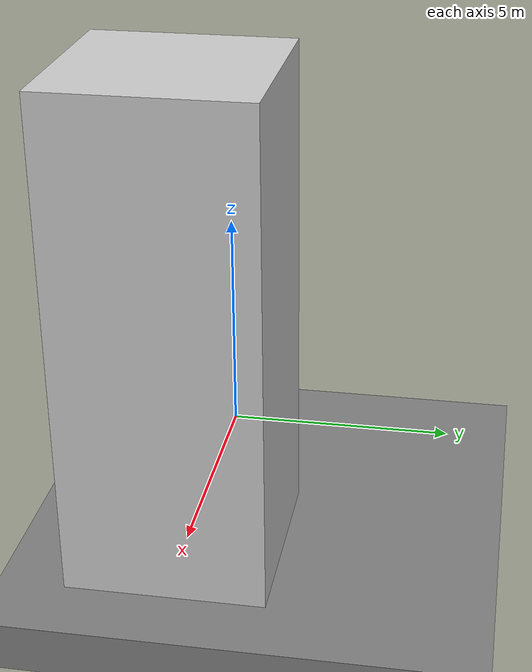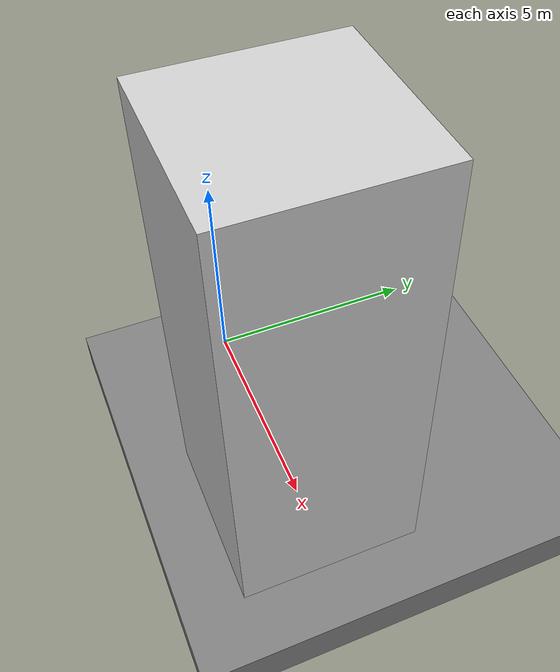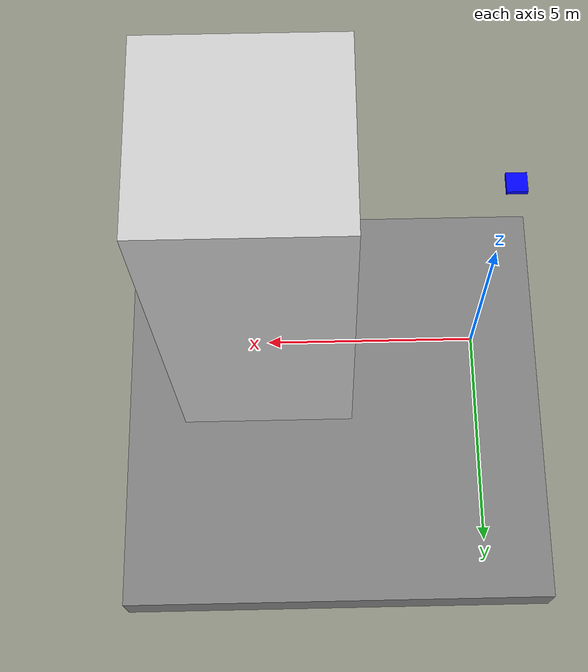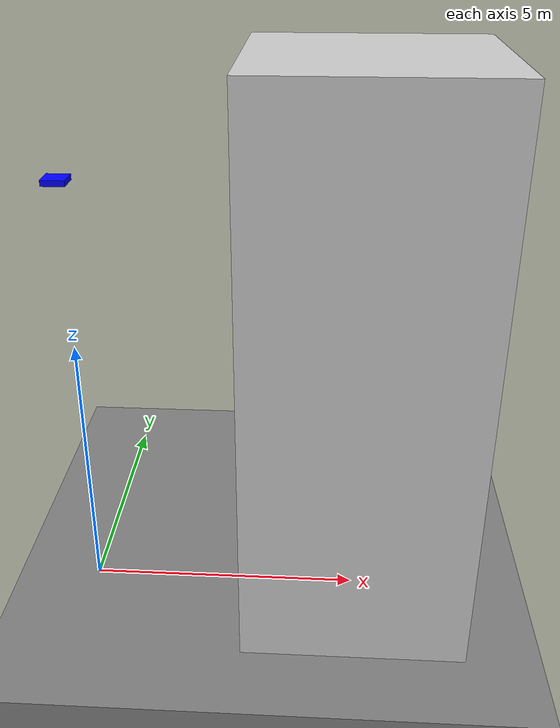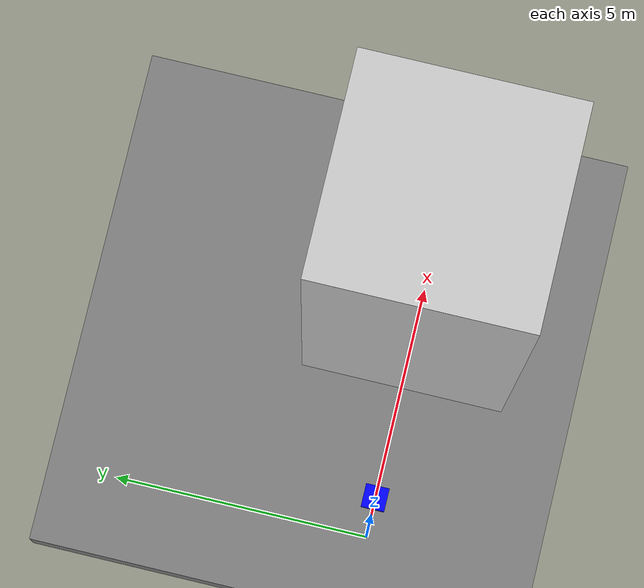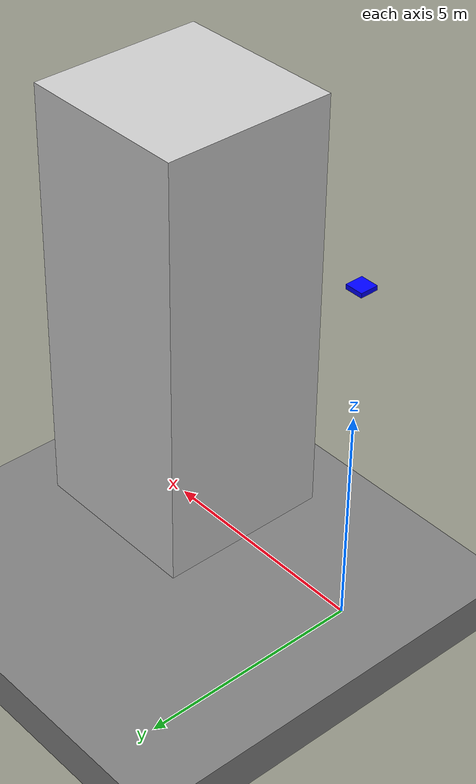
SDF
<sdf version="1.9">
 <world name="simple_city">
  <plugin filename="gz-sim-physics-system" name="gz::sim::systems::Physics"/>
  <plugin filename="gz-sim-sensors-system" name="gz::sim::systems::Sensors">
   <render_engine>ogre2</render_engine>
  </plugin>
  <plugin filename="gz-sim-scene-broadcaster-system" name="gz::sim::systems::SceneBroadcaster"/>
  <plugin filename="gz-sim-user-commands-system" name="gz::sim::systems::UserCommands"/>
  <physics name="1ms" type="ignored">
   <max_step_size>0.001</max_step_size>
   <real_time_factor>1.0</real_time_factor>
  </physics>
  <model name="ground">
   <static>true</static>
   <pose>0 0 -0.5 0 0 0</pose>
   <link name="link">
    <collision name="collision"><geometry><box><size>100 100 1</size></box></geometry></collision>
    <visual name="visual">
     <geometry><box><size>100 100 1</size></box></geometry>
     <material><ambient>0.4 0.4 0.4 1</ambient><diffuse>0.5 0.5 0.5 1</diffuse></material>
    </visual>
   </link>
  </model>
  <model name="building_1">
   <static>true</static>
   <pose>5 0 5 0 0 0</pose>
   <link name="link">
    <collision name="collision"><geometry><box><size>4 4 10</size></box></geometry></collision>
    <visual name="visual">
     <geometry><box><size>4 4 10</size></box></geometry>
     <material><ambient>0.7 0.7 0.7 1</ambient><diffuse>0.8 0.8 0.8 1</diffuse></material>
    </visual>
   </link>
  </model>
  <model name="building_2">
   <static>true</static>
   <pose>5 0 5 0 0 0</pose>
   <link name="link">
    <collision name="collision"><geometry><box><size>4 4 10</size></box></geometry></collision>
    <visual name="visual">
     <geometry><box><size>4 4 10</size></box></geometry>
     <material>
      <ambient>1 1 1 1</ambient>
      <diffuse>1 1 1 1</diffuse>
      <pbr><metal><albedo_map>file://materials/textures/regeh.jpg</albedo_map></metal></pbr>
     </material>
    </visual>
   </link>
  </model>
  <model name="quadcopter">
   <static>false</static>
   <pose>0 0 8 0 0 0</pose>
   <plugin filename="gz-sim-velocity-control-system" name="gz::sim::systems::VelocityControl"/>
   <link name="base_link">
    <inertial><mass>1.5</mass><inertia><ixx>0.0347</ixx><iyy>0.0347</iyy><izz>0.0600</izz></inertia></inertial>
    <collision name="collision"><geometry><box><size>0.4 0.4 0.1</size></box></geometry></collision>
    <visual name="body">
     <geometry><box><size>0.4 0.4 0.1</size></box></geometry>
     <material><ambient>0 0 1 1</ambient><diffuse>0 0 1 1</diffuse></material>
    </visual>
    <sensor name="camera" type="camera">
     <pose>0.2 0 0.05 0 0 0</pose>
     <topic>quadcopter/camera/image</topic>
     <update_rate>30</update_rate>
     <camera>
      <horizontal_fov>1.047</horizontal_fov>
      <image><width>640</width><height>480</height><format>R8G8B8</format></image>
      <clip><near>0.1</near><far>100</far></clip>
     </camera>
     <always_on>1</always_on>
     <visualize>true</visualize>
    </sensor>
   </link>
  </model>
 </world>
</sdf>
